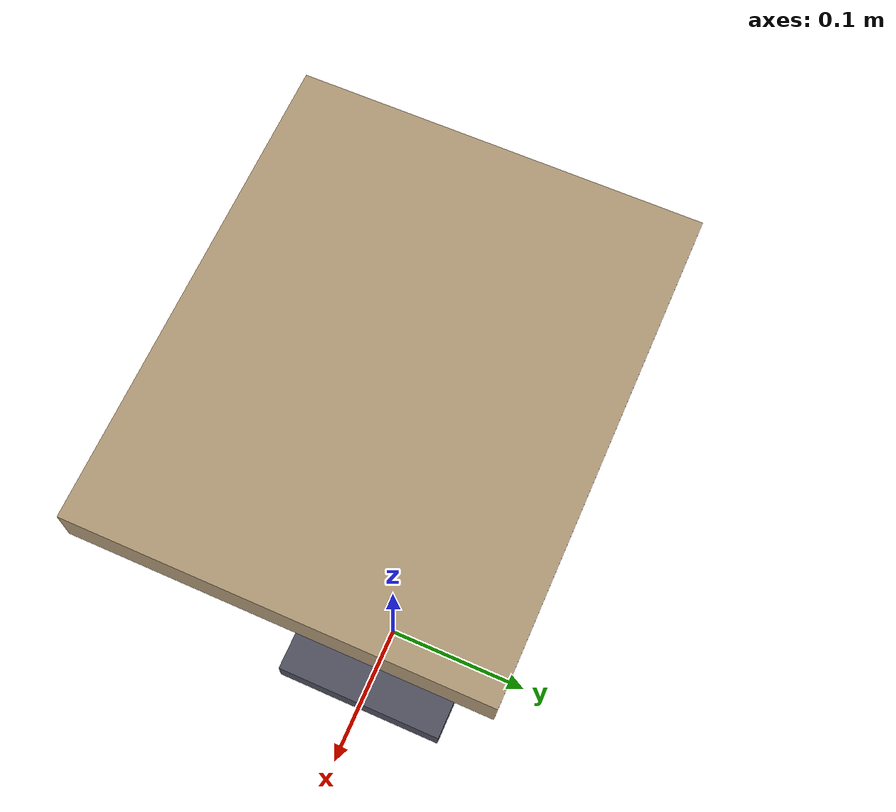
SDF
<?xml version="1.0" ?>
<sdf version="1.7">
  <model name="pick_place_stand">
    <static>true</static>
    <link name="table_link">
      <collision name="tabletop_collision">
        <geometry>
          <box>
            <size>0.22 0.18 0.02</size>
          </box>
        </geometry>
        <pose>0 0 0.423 0 0 0</pose>
      </collision>
      <collision name="pedestal_collision">
        <geometry>
          <box>
            <size>0.06 0.06 0.403</size>
          </box>
        </geometry>
        <pose>0 0 0.2015 0 0 0</pose>
      </collision>
      <collision name="base_collision">
        <geometry>
          <box>
            <size>0.12 0.12 0.02</size>
          </box>
        </geometry>
        <pose>0 0 0.01 0 0 0</pose>
      </collision>
      <visual name="tabletop_visual">
        <geometry>
          <box>
            <size>0.22 0.18 0.02</size>
          </box>
        </geometry>
        <pose>0 0 0.423 0 0 0</pose>
        <material>
          <ambient>0.55 0.49 0.39 1.0</ambient>
          <diffuse>0.67 0.58 0.45 1.0</diffuse>
        </material>
      </visual>
      <visual name="pedestal_visual">
        <geometry>
          <box>
            <size>0.06 0.06 0.403</size>
          </box>
        </geometry>
        <pose>0 0 0.2015 0 0 0</pose>
        <material>
          <ambient>0.30 0.30 0.34 1.0</ambient>
          <diffuse>0.40 0.40 0.46 1.0</diffuse>
        </material>
      </visual>
      <visual name="base_visual">
        <geometry>
          <box>
            <size>0.12 0.12 0.02</size>
          </box>
        </geometry>
        <pose>0 0 0.01 0 0 0</pose>
        <material>
          <ambient>0.22 0.22 0.26 1.0</ambient>
          <diffuse>0.30 0.30 0.36 1.0</diffuse>
        </material>
      </visual>
    </link>
  </model>
</sdf>
